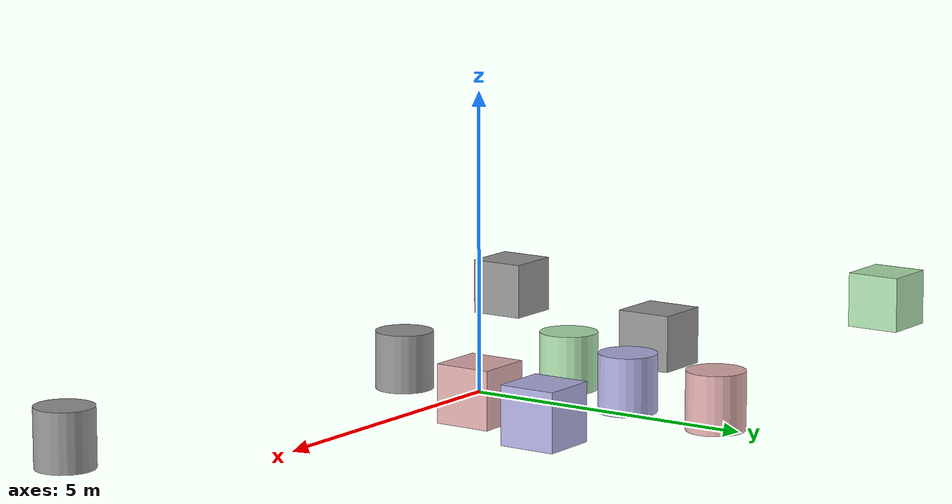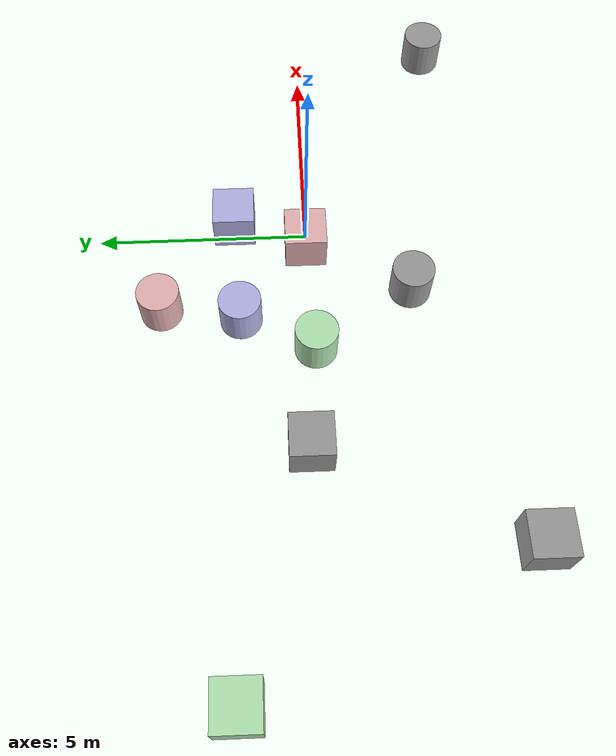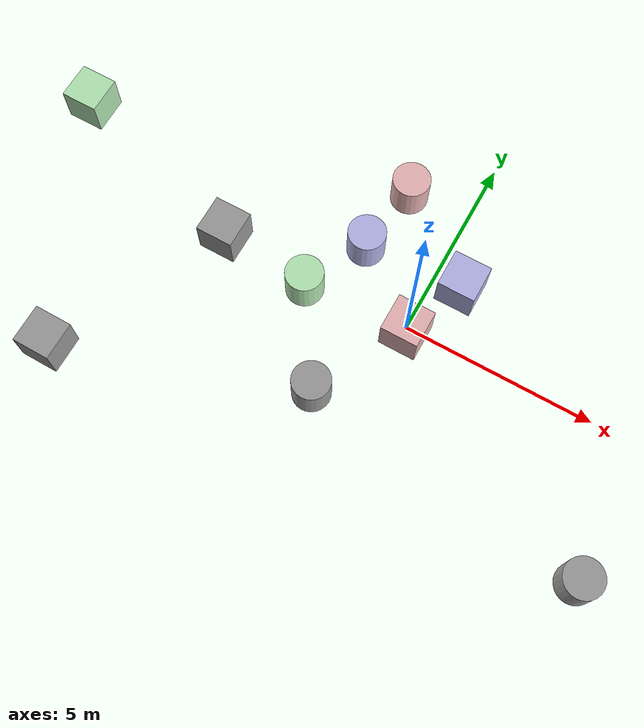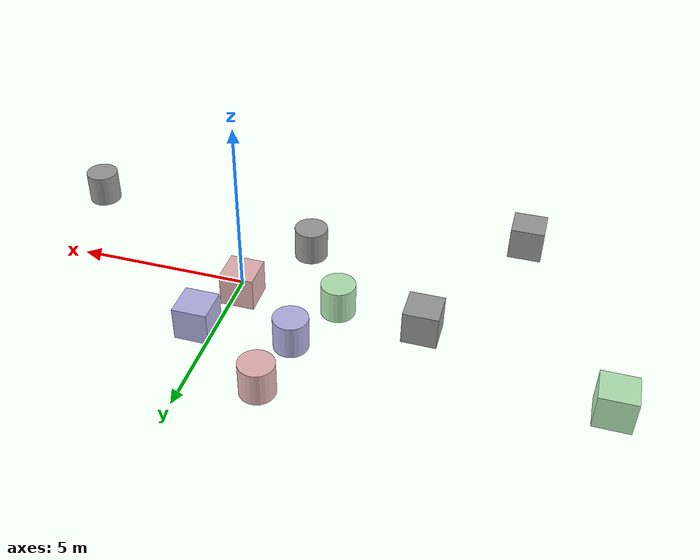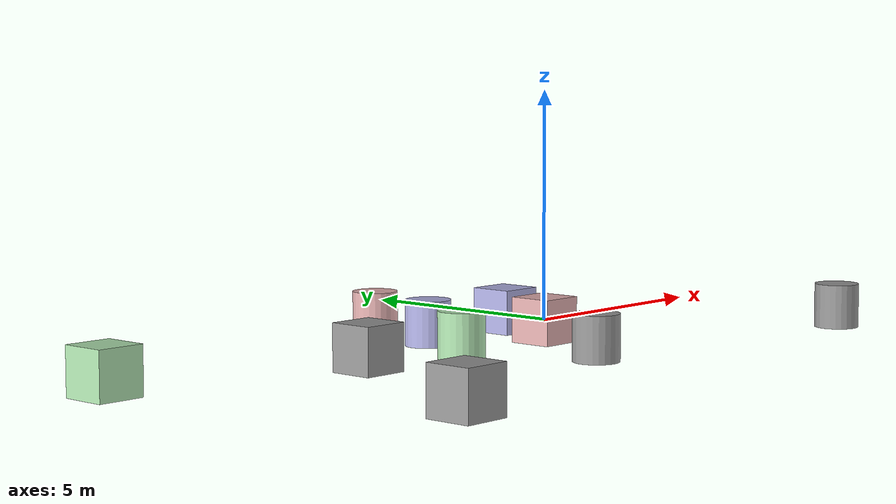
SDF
<?xml version='1.0'?>
<sdf version='1.6'>
  <model name='green_od'>
    <link name='link'>
      <pose frame=''>0 0 0 0 -0 0</pose>
      <inertial>
        <mass>1</mass>
        <inertia>
          <ixx>0.166667</ixx>
          <ixy>0</ixy>
          <ixz>0</ixz>
          <iyy>0.166667</iyy>
          <iyz>0</iyz>
          <izz>0.166667</izz>
        </inertia>
        <pose frame=''>0 0 0 0 -0 0</pose>
      </inertial>
      <self_collide>0</self_collide>
      <kinematic>0</kinematic>
      <gravity>1</gravity>
      <visual name='visual'>
        <geometry>
          <box>
            <size>1 1 1</size>
          </box>
        </geometry>
        <material>
          <script>
            <name>Gazebo/Grey</name>
            <uri>file://media/materials/scripts/gazebo.material</uri>
          </script>
          <shader type='pixel'>
            <normal_map>__default__</normal_map>
          </shader>
          <ambient>0.9 0.3 0.3 1</ambient>
          <diffuse>0.9 0.7 0.7 1</diffuse>
          <specular>0.9 0.01 0.01 1</specular>
          <emissive>0.9 0 0 1</emissive>
        </material>
        <pose frame=''>0 0 0 0 -0 0</pose>
        <transparency>0</transparency>
        <cast_shadows>1</cast_shadows>
      </visual>
      <collision name='collision'>
        <laser_retro>0</laser_retro>
        <max_contacts>10</max_contacts>
        <pose frame=''>0 0 0 0 -0 0</pose>
        <geometry>
          <box>
            <size>1 1 1</size>
          </box>
        </geometry>
        <surface>
          <friction>
            <ode>
              <mu>1</mu>
              <mu2>1</mu2>
              <fdir1>0 0 0</fdir1>
              <slip1>0</slip1>
              <slip2>0</slip2>
            </ode>
            <torsional>
              <coefficient>1</coefficient>
              <patch_radius>0</patch_radius>
              <surface_radius>0</surface_radius>
              <use_patch_radius>1</use_patch_radius>
              <ode>
                <slip>0</slip>
              </ode>
            </torsional>
          </friction>
          <bounce>
            <restitution_coefficient>0</restitution_coefficient>
            <threshold>1e+06</threshold>
          </bounce>
          <contact>
            <collide_without_contact>0</collide_without_contact>
            <collide_without_contact_bitmask>1</collide_without_contact_bitmask>
            <collide_bitmask>1</collide_bitmask>
            <ode>
              <soft_cfm>0</soft_cfm>
              <soft_erp>0.2</soft_erp>
              <kp>1e+13</kp>
              <kd>1</kd>
              <max_vel>0.01</max_vel>
              <min_depth>0</min_depth>
            </ode>
            <bullet>
              <split_impulse>1</split_impulse>
              <split_impulse_penetration_threshold>-0.01</split_impulse_penetration_threshold>
              <soft_cfm>0</soft_cfm>
              <soft_erp>0.2</soft_erp>
              <kp>1e+13</kp>
              <kd>1</kd>
            </bullet>
          </contact>
        </surface>
      </collision>
    </link>
    <link name='link_0'>
      <pose frame=''>-2.83373 -0.136447 0 0 -0 0</pose>
      <inertial>
        <mass>1</mass>
        <inertia>
          <ixx>0.145833</ixx>
          <ixy>0</ixy>
          <ixz>0</ixz>
          <iyy>0.145833</iyy>
          <iyz>0</iyz>
          <izz>0.125</izz>
        </inertia>
        <pose frame=''>0 0 0 0 -0 0</pose>
      </inertial>
      <gravity>1</gravity>
      <self_collide>0</self_collide>
      <kinematic>0</kinematic>
      <visual name='visual'>
        <pose frame=''>0 0 0 0 -0 0</pose>
        <geometry>
          <cylinder>
            <radius>0.5</radius>
            <length>1</length>
          </cylinder>
        </geometry>
        <material>
          <lighting>1</lighting>
          <script>
            <uri>file://media/materials/scripts/gazebo.material</uri>
            <name>Gazebo/Grey</name>
          </script>
          <shader type='pixel'>
            <normal_map>__default__</normal_map>
          </shader>
          <ambient>0.3 0.9 0.3 1</ambient>
          <diffuse>0.7 0.9 0.7 1</diffuse>
          <specular>0.01 0.9 0.01 1</specular>
          <emissive>0 0.9 0 1</emissive>
        </material>
        <transparency>0</transparency>
        <cast_shadows>1</cast_shadows>
      </visual>
      <collision name='collision'>
        <laser_retro>0</laser_retro>
        <max_contacts>10</max_contacts>
        <pose frame=''>0 0 0 0 -0 0</pose>
        <geometry>
          <cylinder>
            <radius>0.5</radius>
            <length>1</length>
          </cylinder>
        </geometry>
        <surface>
          <friction>
            <ode>
              <mu>1</mu>
              <mu2>1</mu2>
              <fdir1>0 0 0</fdir1>
              <slip1>0</slip1>
              <slip2>0</slip2>
            </ode>
            <torsional>
              <coefficient>1</coefficient>
              <patch_radius>0</patch_radius>
              <surface_radius>0</surface_radius>
              <use_patch_radius>1</use_patch_radius>
              <ode>
                <slip>0</slip>
              </ode>
            </torsional>
          </friction>
          <bounce>
            <restitution_coefficient>0</restitution_coefficient>
            <threshold>1e+06</threshold>
          </bounce>
          <contact>
            <collide_without_contact>0</collide_without_contact>
            <collide_without_contact_bitmask>1</collide_without_contact_bitmask>
            <collide_bitmask>1</collide_bitmask>
            <ode>
              <soft_cfm>0</soft_cfm>
              <soft_erp>0.2</soft_erp>
              <kp>1e+13</kp>
              <kd>1</kd>
              <max_vel>0.01</max_vel>
              <min_depth>0</min_depth>
            </ode>
            <bullet>
              <split_impulse>1</split_impulse>
              <split_impulse_penetration_threshold>-0.01</split_impulse_penetration_threshold>
              <soft_cfm>0</soft_cfm>
              <soft_erp>0.2</soft_erp>
              <kp>1e+13</kp>
              <kd>1</kd>
            </bullet>
          </contact>
        </surface>
      </collision>
    </link>
    <link name='link_1'>
      <pose frame=''>-2 1.60758 -0 0 -0 0</pose>
      <inertial>
        <mass>1</mass>
        <inertia>
          <ixx>0.145833</ixx>
          <ixy>0</ixy>
          <ixz>0</ixz>
          <iyy>0.145833</iyy>
          <iyz>0</iyz>
          <izz>0.125</izz>
        </inertia>
        <pose frame=''>0 0 0 0 -0 0</pose>
      </inertial>
      <gravity>1</gravity>
      <self_collide>0</self_collide>
      <kinematic>0</kinematic>
      <visual name='visual'>
        <pose frame=''>0 0 0 0 -0 0</pose>
        <geometry>
          <cylinder>
            <radius>0.5</radius>
            <length>1</length>
          </cylinder>
        </geometry>
        <material>
          <lighting>1</lighting>
          <script>
            <uri>file://media/materials/scripts/gazebo.material</uri>
            <name>Gazebo/Grey</name>
          </script>
          <shader type='pixel'>
            <normal_map>__default__</normal_map>
          </shader>
          <ambient>0.3 0.3 0.3 1</ambient>
          <diffuse>0.7 0.7 0.9 1</diffuse>
          <specular>0.01 0.01 0.9 1</specular>
          <emissive>0 0 0.9 1</emissive>
        </material>
        <transparency>0</transparency>
        <cast_shadows>1</cast_shadows>
      </visual>
      <collision name='collision'>
        <laser_retro>0</laser_retro>
        <max_contacts>10</max_contacts>
        <pose frame=''>0 0 0 0 -0 0</pose>
        <geometry>
          <cylinder>
            <radius>0.5</radius>
            <length>1</length>
          </cylinder>
        </geometry>
        <surface>
          <friction>
            <ode>
              <mu>1</mu>
              <mu2>1</mu2>
              <fdir1>0 0 0</fdir1>
              <slip1>0</slip1>
              <slip2>0</slip2>
            </ode>
            <torsional>
              <coefficient>1</coefficient>
              <patch_radius>0</patch_radius>
              <surface_radius>0</surface_radius>
              <use_patch_radius>1</use_patch_radius>
              <ode>
                <slip>0</slip>
              </ode>
            </torsional>
          </friction>
          <bounce>
            <restitution_coefficient>0</restitution_coefficient>
            <threshold>1e+06</threshold>
          </bounce>
          <contact>
            <collide_without_contact>0</collide_without_contact>
            <collide_without_contact_bitmask>1</collide_without_contact_bitmask>
            <collide_bitmask>1</collide_bitmask>
            <ode>
              <soft_cfm>0</soft_cfm>
              <soft_erp>0.2</soft_erp>
              <kp>1e+13</kp>
              <kd>1</kd>
              <max_vel>0.01</max_vel>
              <min_depth>0</min_depth>
            </ode>
            <bullet>
              <split_impulse>1</split_impulse>
              <split_impulse_penetration_threshold>-0.01</split_impulse_penetration_threshold>
              <soft_cfm>0</soft_cfm>
              <soft_erp>0.2</soft_erp>
              <kp>1e+13</kp>
              <kd>1</kd>
            </bullet>
          </contact>
        </surface>
      </collision>
    </link>
    <link name='link_10'>
      <pose frame=''>0.67771 1.74185 -0 0 -0 0</pose>
      <inertial>
        <mass>1</mass>
        <inertia>
          <ixx>0.166667</ixx>
          <ixy>0</ixy>
          <ixz>0</ixz>
          <iyy>0.166667</iyy>
          <iyz>0</iyz>
          <izz>0.166667</izz>
        </inertia>
        <pose frame=''>0 0 0 0 -0 0</pose>
      </inertial>
      <gravity>1</gravity>
      <self_collide>0</self_collide>
      <kinematic>0</kinematic>
      <visual name='visual'>
        <pose frame=''>0 0 0 0 -0 0</pose>
        <geometry>
          <box>
            <size>1 1 1</size>
          </box>
        </geometry>
        <material>
          <lighting>1</lighting>
          <script>
            <uri>file://media/materials/scripts/gazebo.material</uri>
            <name>Gazebo/Grey</name>
          </script>
          <shader type='pixel'>
            <normal_map>__default__</normal_map>
          </shader>
          <ambient>0.3 0.3 0.9 1</ambient>
          <diffuse>0.7 0.7 0.9 1</diffuse>
          <specular>0.01 0.01 0.9 1</specular>
          <emissive>0 0 0.9 1</emissive>
        </material>
        <transparency>0</transparency>
        <cast_shadows>1</cast_shadows>
      </visual>
      <collision name='collision'>
        <laser_retro>0</laser_retro>
        <max_contacts>10</max_contacts>
        <pose frame=''>0 0 0 0 -0 0</pose>
        <geometry>
          <box>
            <size>1 1 1</size>
          </box>
        </geometry>
        <surface>
          <friction>
            <ode>
              <mu>1</mu>
              <mu2>1</mu2>
              <fdir1>0 0 0</fdir1>
              <slip1>0</slip1>
              <slip2>0</slip2>
            </ode>
            <torsional>
              <coefficient>1</coefficient>
              <patch_radius>0</patch_radius>
              <surface_radius>0</surface_radius>
              <use_patch_radius>1</use_patch_radius>
              <ode>
                <slip>0</slip>
              </ode>
            </torsional>
          </friction>
          <bounce>
            <restitution_coefficient>0</restitution_coefficient>
            <threshold>1e+06</threshold>
          </bounce>
          <contact>
            <collide_without_contact>0</collide_without_contact>
            <collide_without_contact_bitmask>1</collide_without_contact_bitmask>
            <collide_bitmask>1</collide_bitmask>
            <ode>
              <soft_cfm>0</soft_cfm>
              <soft_erp>0.2</soft_erp>
              <kp>1e+13</kp>
              <kd>1</kd>
              <max_vel>0.01</max_vel>
              <min_depth>0</min_depth>
            </ode>
            <bullet>
              <split_impulse>1</split_impulse>
              <split_impulse_penetration_threshold>-0.01</split_impulse_penetration_threshold>
              <soft_cfm>0</soft_cfm>
              <soft_erp>0.2</soft_erp>
              <kp>1e+13</kp>
              <kd>1</kd>
            </bullet>
          </contact>
        </surface>
      </collision>
    </link>
    <link name='link_2'>
      <pose frame=''>-1.71772 3.50452 -0 0 -0 0</pose>
      <inertial>
        <mass>1</mass>
        <inertia>
          <ixx>0.145833</ixx>
          <ixy>0</ixy>
          <ixz>0</ixz>
          <iyy>0.145833</iyy>
          <iyz>0</iyz>
          <izz>0.125</izz>
        </inertia>
        <pose frame=''>0 0 0 0 -0 0</pose>
      </inertial>
      <gravity>1</gravity>
      <self_collide>0</self_collide>
      <kinematic>0</kinematic>
      <visual name='visual'>
        <pose frame=''>0 0 0 0 -0 0</pose>
        <geometry>
          <cylinder>
            <radius>0.5</radius>
            <length>1</length>
          </cylinder>
        </geometry>
        <material>
          <lighting>1</lighting>
          <script>
            <uri>file://media/materials/scripts/gazebo.material</uri>
            <name>Gazebo/Grey</name>
          </script>
          <shader type='pixel'>
            <normal_map>__default__</normal_map>
          </shader>
          <ambient>0.9 0.3 0.3 1</ambient>
          <diffuse>0.9 0.7 0.7 1</diffuse>
          <specular>0.9 0.01 0.01 1</specular>
          <emissive>0.9 0 0 1</emissive>
        </material>
        <transparency>0</transparency>
        <cast_shadows>1</cast_shadows>
      </visual>
      <collision name='collision'>
        <laser_retro>0</laser_retro>
        <max_contacts>10</max_contacts>
        <pose frame=''>0 0 0 0 -0 0</pose>
        <geometry>
          <cylinder>
            <radius>0.5</radius>
            <length>1</length>
          </cylinder>
        </geometry>
        <surface>
          <friction>
            <ode>
              <mu>1</mu>
              <mu2>1</mu2>
              <fdir1>0 0 0</fdir1>
              <slip1>0</slip1>
              <slip2>0</slip2>
            </ode>
            <torsional>
              <coefficient>1</coefficient>
              <patch_radius>0</patch_radius>
              <surface_radius>0</surface_radius>
              <use_patch_radius>1</use_patch_radius>
              <ode>
                <slip>0</slip>
              </ode>
            </torsional>
          </friction>
          <bounce>
            <restitution_coefficient>0</restitution_coefficient>
            <threshold>1e+06</threshold>
          </bounce>
          <contact>
            <collide_without_contact>0</collide_without_contact>
            <collide_without_contact_bitmask>1</collide_without_contact_bitmask>
            <collide_bitmask>1</collide_bitmask>
            <ode>
              <soft_cfm>0</soft_cfm>
              <soft_erp>0.2</soft_erp>
              <kp>1e+13</kp>
              <kd>1</kd>
              <max_vel>0.01</max_vel>
              <min_depth>0</min_depth>
            </ode>
            <bullet>
              <split_impulse>1</split_impulse>
              <split_impulse_penetration_threshold>-0.01</split_impulse_penetration_threshold>
              <soft_cfm>0</soft_cfm>
              <soft_erp>0.2</soft_erp>
              <kp>1e+13</kp>
              <kd>1</kd>
            </bullet>
          </contact>
        </surface>
      </collision>
    </link>
    <link name='link_3'>
      <pose frame=''>-10.5208 1.73089 0 0 -0 0</pose>
      <inertial>
        <mass>1</mass>
        <inertia>
          <ixx>0.166667</ixx>
          <ixy>0</ixy>
          <ixz>0</ixz>
          <iyy>0.166667</iyy>
          <iyz>0</iyz>
          <izz>0.166667</izz>
        </inertia>
        <pose frame=''>0 0 0 0 -0 0</pose>
      </inertial>
      <gravity>1</gravity>
      <self_collide>0</self_collide>
      <kinematic>0</kinematic>
      <visual name='visual'>
        <pose frame=''>0 0 0 0 -0 0</pose>
        <geometry>
          <box>
            <size>1 1 1</size>
          </box>
        </geometry>
        <material>
          <lighting>1</lighting>
          <script>
            <uri>file://media/materials/scripts/gazebo.material</uri>
            <name>Gazebo/Grey</name>
          </script>
          <shader type='pixel'>
            <normal_map>__default__</normal_map>
          </shader>
          <ambient>0.9 0.3 0.3 1</ambient>
          <diffuse>0.7 0.9 0.7 1</diffuse>
          <specular>0.01 0.01 0.9 1</specular>
          <emissive>0 0 0.9 1</emissive>
        </material>
        <transparency>0</transparency>
        <cast_shadows>1</cast_shadows>
      </visual>
      <collision name='collision'>
        <laser_retro>0</laser_retro>
        <max_contacts>10</max_contacts>
        <pose frame=''>0 0 0 0 -0 0</pose>
        <geometry>
          <box>
            <size>1 1 1</size>
          </box>
        </geometry>
        <surface>
          <friction>
            <ode>
              <mu>1</mu>
              <mu2>1</mu2>
              <fdir1>0 0 0</fdir1>
              <slip1>0</slip1>
              <slip2>0</slip2>
            </ode>
            <torsional>
              <coefficient>1</coefficient>
              <patch_radius>0</patch_radius>
              <surface_radius>0</surface_radius>
              <use_patch_radius>1</use_patch_radius>
              <ode>
                <slip>0</slip>
              </ode>
            </torsional>
          </friction>
          <bounce>
            <restitution_coefficient>0</restitution_coefficient>
            <threshold>1e+06</threshold>
          </bounce>
          <contact>
            <collide_without_contact>0</collide_without_contact>
            <collide_without_contact_bitmask>1</collide_without_contact_bitmask>
            <collide_bitmask>1</collide_bitmask>
            <ode>
              <soft_cfm>0</soft_cfm>
              <soft_erp>0.2</soft_erp>
              <kp>1e+13</kp>
              <kd>1</kd>
              <max_vel>0.01</max_vel>
              <min_depth>0</min_depth>
            </ode>
            <bullet>
              <split_impulse>1</split_impulse>
              <split_impulse_penetration_threshold>-0.01</split_impulse_penetration_threshold>
              <soft_cfm>0</soft_cfm>
              <soft_erp>0.2</soft_erp>
              <kp>1e+13</kp>
              <kd>1</kd>
            </bullet>
          </contact>
        </surface>
      </collision>
    </link>
    <link name='link_4'>
      <pose frame=''>-5.31989 0.093914 0 0 -0 0</pose>
      <inertial>
        <mass>1</mass>
        <inertia>
          <ixx>0.166667</ixx>
          <ixy>0</ixy>
          <ixz>0</ixz>
          <iyy>0.166667</iyy>
          <iyz>0</iyz>
          <izz>0.166667</izz>
        </inertia>
      </inertial>
      <visual name='visual'>
        <pose frame=''>0 0 0 0 -0 0</pose>
        <geometry>
          <box>
            <size>1 1 1</size>
          </box>
        </geometry>
        <material>
          <lighting>1</lighting>
          <script>
            <uri>file://media/materials/scripts/gazebo.material</uri>
            <name>Gazebo/Grey</name>
          </script>
          <shader type='pixel'/>
          <ambient>0.3 0.3 0.3 1</ambient>
          <diffuse>0.7 0.7 0.7 1</diffuse>
          <specular>0.01 0.01 0.01 1</specular>
          <emissive>0 0 0 1</emissive>
        </material>
        <transparency>0</transparency>
        <cast_shadows>1</cast_shadows>
      </visual>
      <collision name='collision'>
        <laser_retro>0</laser_retro>
        <max_contacts>10</max_contacts>
        <pose frame=''>0 0 0 0 -0 0</pose>
        <geometry>
          <box>
            <size>1 1 1</size>
          </box>
        </geometry>
        <surface>
          <friction>
            <ode>
              <mu>1</mu>
              <mu2>1</mu2>
              <fdir1>0 0 0</fdir1>
              <slip1>0</slip1>
              <slip2>0</slip2>
            </ode>
            <torsional>
              <coefficient>1</coefficient>
              <patch_radius>0</patch_radius>
              <surface_radius>0</surface_radius>
              <use_patch_radius>1</use_patch_radius>
              <ode>
                <slip>0</slip>
              </ode>
            </torsional>
          </friction>
          <bounce>
            <restitution_coefficient>0</restitution_coefficient>
            <threshold>1e+06</threshold>
          </bounce>
          <contact>
            <collide_without_contact>0</collide_without_contact>
            <collide_without_contact_bitmask>1</collide_without_contact_bitmask>
            <collide_bitmask>1</collide_bitmask>
            <ode>
              <soft_cfm>0</soft_cfm>
              <soft_erp>0.2</soft_erp>
              <kp>1e+13</kp>
              <kd>1</kd>
              <max_vel>0.01</max_vel>
              <min_depth>0</min_depth>
            </ode>
            <bullet>
              <split_impulse>1</split_impulse>
              <split_impulse_penetration_threshold>-0.01</split_impulse_penetration_threshold>
              <soft_cfm>0</soft_cfm>
              <soft_erp>0.2</soft_erp>
              <kp>1e+13</kp>
              <kd>1</kd>
            </bullet>
          </contact>
        </surface>
      </collision>
    </link>
    <link name='link_5'>
      <pose frame=''>-1.30524 -2.49123 -0 0 -0 0</pose>
      <inertial>
        <mass>1</mass>
        <inertia>
          <ixx>0.145833</ixx>
          <ixy>0</ixy>
          <ixz>0</ixz>
          <iyy>0.145833</iyy>
          <iyz>0</iyz>
          <izz>0.125</izz>
        </inertia>
      </inertial>
      <visual name='visual'>
        <pose frame=''>0 0 0 0 -0 0</pose>
        <geometry>
          <cylinder>
            <radius>0.5</radius>
            <length>1</length>
          </cylinder>
        </geometry>
        <material>
          <lighting>1</lighting>
          <script>
            <uri>file://media/materials/scripts/gazebo.material</uri>
            <name>Gazebo/Grey</name>
          </script>
          <shader type='pixel'/>
          <ambient>0.3 0.3 0.3 1</ambient>
          <diffuse>0.7 0.7 0.7 1</diffuse>
          <specular>0.01 0.01 0.01 1</specular>
          <emissive>0 0 0 1</emissive>
        </material>
        <transparency>0</transparency>
        <cast_shadows>1</cast_shadows>
      </visual>
      <collision name='collision'>
        <laser_retro>0</laser_retro>
        <max_contacts>10</max_contacts>
        <pose frame=''>0 0 0 0 -0 0</pose>
        <geometry>
          <cylinder>
            <radius>0.5</radius>
            <length>1</length>
          </cylinder>
        </geometry>
        <surface>
          <friction>
            <ode>
              <mu>1</mu>
              <mu2>1</mu2>
              <fdir1>0 0 0</fdir1>
              <slip1>0</slip1>
              <slip2>0</slip2>
            </ode>
            <torsional>
              <coefficient>1</coefficient>
              <patch_radius>0</patch_radius>
              <surface_radius>0</surface_radius>
              <use_patch_radius>1</use_patch_radius>
              <ode>
                <slip>0</slip>
              </ode>
            </torsional>
          </friction>
          <bounce>
            <restitution_coefficient>0</restitution_coefficient>
            <threshold>1e+06</threshold>
          </bounce>
          <contact>
            <collide_without_contact>0</collide_without_contact>
            <collide_without_contact_bitmask>1</collide_without_contact_bitmask>
            <collide_bitmask>1</collide_bitmask>
            <ode>
              <soft_cfm>0</soft_cfm>
              <soft_erp>0.2</soft_erp>
              <kp>1e+13</kp>
              <kd>1</kd>
              <max_vel>0.01</max_vel>
              <min_depth>0</min_depth>
            </ode>
            <bullet>
              <split_impulse>1</split_impulse>
              <split_impulse_penetration_threshold>-0.01</split_impulse_penetration_threshold>
              <soft_cfm>0</soft_cfm>
              <soft_erp>0.2</soft_erp>
              <kp>1e+13</kp>
              <kd>1</kd>
            </bullet>
          </contact>
        </surface>
      </collision>
    </link>
    <link name='link_7'>
      <pose frame=''>-7.61254 -4.63686 -0 0 -0 0</pose>
      <inertial>
        <mass>1</mass>
        <inertia>
          <ixx>0.166667</ixx>
          <ixy>0</ixy>
          <ixz>0</ixz>
          <iyy>0.166667</iyy>
          <iyz>0</iyz>
          <izz>0.166667</izz>
        </inertia>
      </inertial>
      <visual name='visual'>
        <pose frame=''>0 0 0 0 -0 0</pose>
        <geometry>
          <box>
            <size>1 1 1</size>
          </box>
        </geometry>
        <material>
          <lighting>1</lighting>
          <script>
            <uri>file://media/materials/scripts/gazebo.material</uri>
            <name>Gazebo/Grey</name>
          </script>
          <shader type='pixel'/>
          <ambient>0.3 0.3 0.3 1</ambient>
          <diffuse>0.7 0.7 0.7 1</diffuse>
          <specular>0.01 0.01 0.01 1</specular>
          <emissive>0 0 0 1</emissive>
        </material>
        <transparency>0</transparency>
        <cast_shadows>1</cast_shadows>
      </visual>
      <collision name='collision'>
        <laser_retro>0</laser_retro>
        <max_contacts>10</max_contacts>
        <pose frame=''>0 0 0 0 -0 0</pose>
        <geometry>
          <box>
            <size>1 1 1</size>
          </box>
        </geometry>
        <surface>
          <friction>
            <ode>
              <mu>1</mu>
              <mu2>1</mu2>
              <fdir1>0 0 0</fdir1>
              <slip1>0</slip1>
              <slip2>0</slip2>
            </ode>
            <torsional>
              <coefficient>1</coefficient>
              <patch_radius>0</patch_radius>
              <surface_radius>0</surface_radius>
              <use_patch_radius>1</use_patch_radius>
              <ode>
                <slip>0</slip>
              </ode>
            </torsional>
          </friction>
          <bounce>
            <restitution_coefficient>0</restitution_coefficient>
            <threshold>1e+06</threshold>
          </bounce>
          <contact>
            <collide_without_contact>0</collide_without_contact>
            <collide_without_contact_bitmask>1</collide_without_contact_bitmask>
            <collide_bitmask>1</collide_bitmask>
            <ode>
              <soft_cfm>0</soft_cfm>
              <soft_erp>0.2</soft_erp>
              <kp>1e+13</kp>
              <kd>1</kd>
              <max_vel>0.01</max_vel>
              <min_depth>0</min_depth>
            </ode>
            <bullet>
              <split_impulse>1</split_impulse>
              <split_impulse_penetration_threshold>-0.01</split_impulse_penetration_threshold>
              <soft_cfm>0</soft_cfm>
              <soft_erp>0.2</soft_erp>
              <kp>1e+13</kp>
              <kd>1</kd>
            </bullet>
          </contact>
        </surface>
      </collision>
    </link>
    <link name='link_8'>
      <pose frame=''>6.26832 -3.52988 -0 0 -0 0</pose>
      <inertial>
        <mass>1</mass>
        <inertia>
          <ixx>0.145833</ixx>
          <ixy>0</ixy>
          <ixz>0</ixz>
          <iyy>0.145833</iyy>
          <iyz>0</iyz>
          <izz>0.125</izz>
        </inertia>
      </inertial>
      <visual name='visual'>
        <pose frame=''>0 0 0 0 -0 0</pose>
        <geometry>
          <cylinder>
            <radius>0.5</radius>
            <length>1</length>
          </cylinder>
        </geometry>
        <material>
          <lighting>1</lighting>
          <script>
            <uri>file://media/materials/scripts/gazebo.material</uri>
            <name>Gazebo/Grey</name>
          </script>
          <shader type='pixel'/>
          <ambient>0.3 0.3 0.3 1</ambient>
          <diffuse>0.7 0.7 0.7 1</diffuse>
          <specular>0.01 0.01 0.01 1</specular>
          <emissive>0 0 0 1</emissive>
        </material>
        <transparency>0</transparency>
        <cast_shadows>1</cast_shadows>
      </visual>
      <collision name='collision'>
        <laser_retro>0</laser_retro>
        <max_contacts>10</max_contacts>
        <pose frame=''>0 0 0 0 -0 0</pose>
        <geometry>
          <cylinder>
            <radius>0.5</radius>
            <length>1</length>
          </cylinder>
        </geometry>
        <surface>
          <friction>
            <ode>
              <mu>1</mu>
              <mu2>1</mu2>
              <fdir1>0 0 0</fdir1>
              <slip1>0</slip1>
              <slip2>0</slip2>
            </ode>
            <torsional>
              <coefficient>1</coefficient>
              <patch_radius>0</patch_radius>
              <surface_radius>0</surface_radius>
              <use_patch_radius>1</use_patch_radius>
              <ode>
                <slip>0</slip>
              </ode>
            </torsional>
          </friction>
          <bounce>
            <restitution_coefficient>0</restitution_coefficient>
            <threshold>1e+06</threshold>
          </bounce>
          <contact>
            <collide_without_contact>0</collide_without_contact>
            <collide_without_contact_bitmask>1</collide_without_contact_bitmask>
            <collide_bitmask>1</collide_bitmask>
            <ode>
              <soft_cfm>0</soft_cfm>
              <soft_erp>0.2</soft_erp>
              <kp>1e+13</kp>
              <kd>1</kd>
              <max_vel>0.01</max_vel>
              <min_depth>0</min_depth>
            </ode>
            <bullet>
              <split_impulse>1</split_impulse>
              <split_impulse_penetration_threshold>-0.01</split_impulse_penetration_threshold>
              <soft_cfm>0</soft_cfm>
              <soft_erp>0.2</soft_erp>
              <kp>1e+13</kp>
              <kd>1</kd>
            </bullet>
          </contact>
        </surface>
      </collision>
    </link>
    <static>0</static>
    <allow_auto_disable>1</allow_auto_disable>
  </model>
</sdf>
